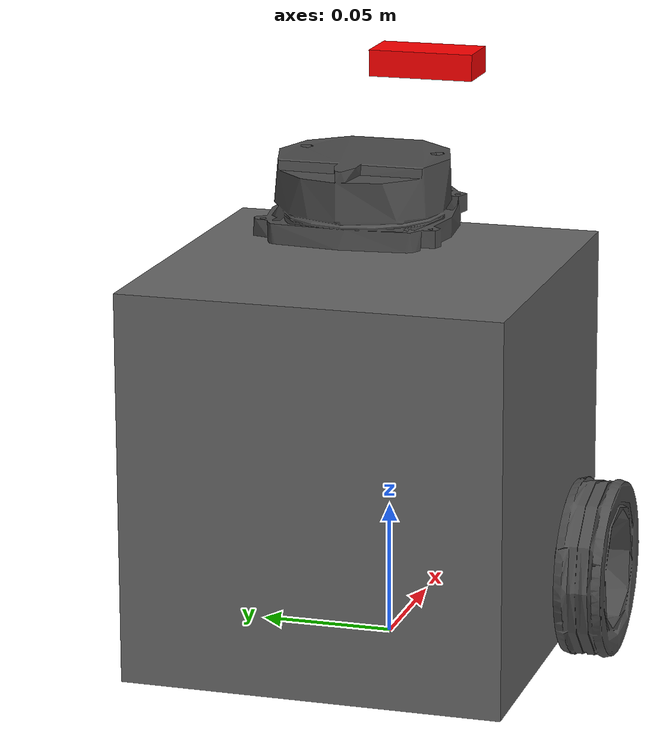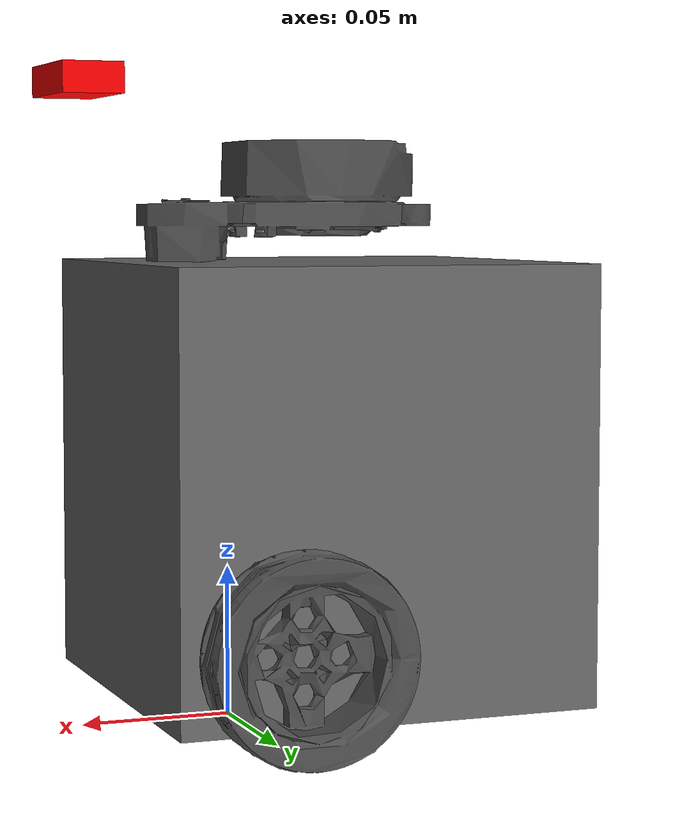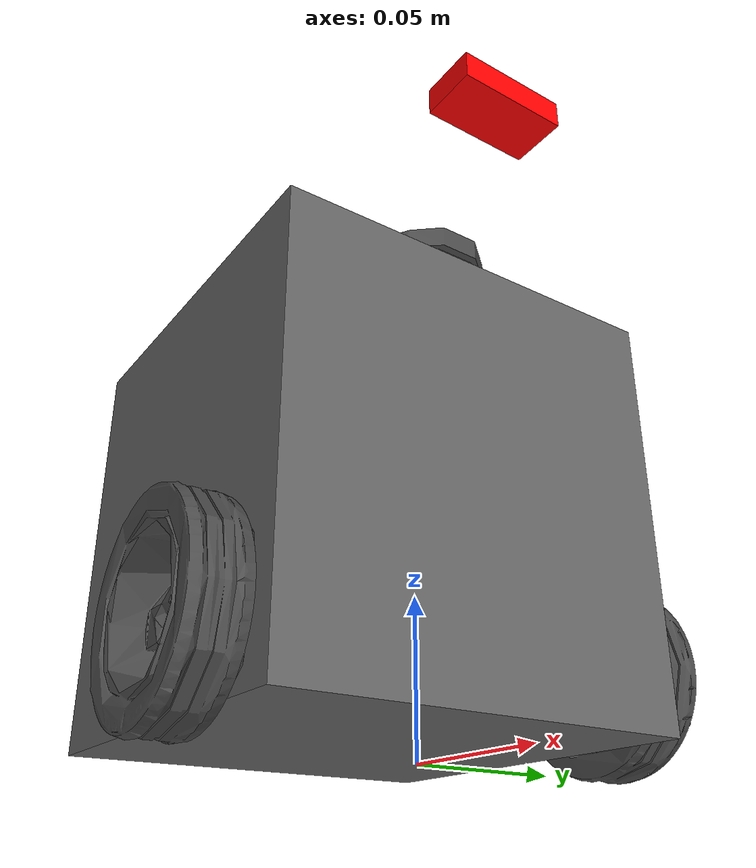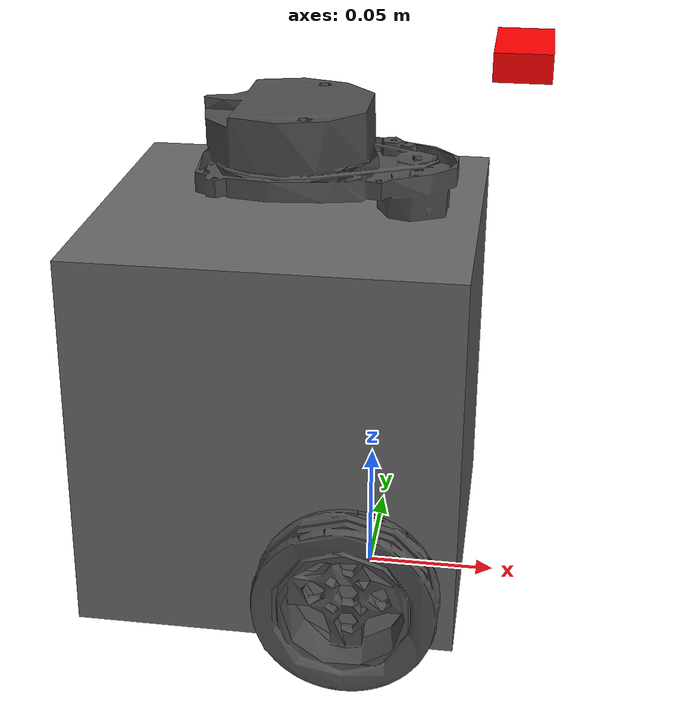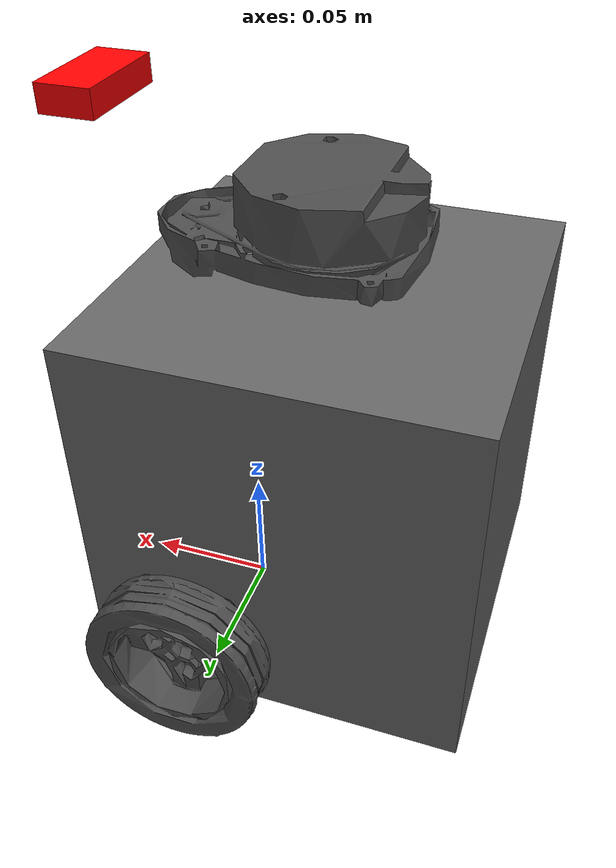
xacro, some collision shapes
<?xml version="1.0"?>
<robot xmlns:xacro="http://ros.org/wiki/xacro" name="turtlebot3_burger_radar">

  <xacro:include filename="$(find turtlebot3_description)/urdf/turtlebot3_burger.urdf"/>

  <link name="radar_link">
    <visual>
      <geometry><box size="0.02 0.04 0.01"/></geometry>
      <material name="red"><color rgba="1.0 0.0 0.0 1.0"/></material>
    </visual>
    <collision>
      <geometry><box size="0.02 0.04 0.01"/></geometry>
    </collision>
    <inertial>
      <mass value="0.01"/>
      <inertia ixx="0.0001" ixy="0" ixz="0" iyy="0.0001" iyz="0" izz="0.0001"/>
    </inertial>
  </link>

  <joint name="radar_joint" type="fixed">
    <parent link="base_link"/>
    <child link="radar_link"/>
    <origin xyz="0.05 0 0.2" rpy="0 0 0"/>
  </joint>

  <gazebo reference="radar_link">
    <material>Gazebo/Red</material>
    <sensor name="radar_sensor" type="ray">
      <always_on>true</always_on>
      <update_rate>10</update_rate>
      <visualize>true</visualize>
      <ray>
        <scan>
          <horizontal>
            <samples>32</samples>
            <resolution>1</resolution>
            <min_angle>-0.785</min_angle>
            <max_angle>0.785</max_angle>
          </horizontal>
        </scan>
        <range>
          <min>0.15</min>
          <max>5.0</max>
          <resolution>0.04</resolution>
        </range>
        <noise>
          <type>gaussian</type>
          <mean>0.0</mean>
          <stddev>0.2</stddev>
        </noise>
      </ray>
      <plugin name="radar_plugin" filename="libgazebo_ros_ray_sensor.so">
        <ros>
          <remapping>out:=radar_scan</remapping>
        </ros>
        <output_type>sensor_msgs/LaserScan</output_type>
        <frame_name>radar_link</frame_name>
      </plugin>
    </sensor>
  </gazebo>
</robot>

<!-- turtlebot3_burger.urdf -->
<!-- |    This document was autogenerated by xacro from /tmp/claude-0/-home-claude/8f5dd28e-fe63-5f45-8f7e-d1a0395364a9/scratchpad/repos/tb3/turtlebot3_description/urdf/turtlebot3_burger.urdf | -->
<!-- |    EDITING THIS FILE BY HAND IS NOT RECOMMENDED                                 | -->
<robot name="turtlebot3_burger">
  <!-- Init colour -->
  <material name="black">
    <color rgba="0.0 0.0 0.0 1.0"/>
  </material>
  <material name="dark">
    <color rgba="0.3 0.3 0.3 1.0"/>
  </material>
  <material name="light_black">
    <color rgba="0.4 0.4 0.4 1.0"/>
  </material>
  <material name="blue">
    <color rgba="0.0 0.0 0.8 1.0"/>
  </material>
  <material name="green">
    <color rgba="0.0 0.8 0.0 1.0"/>
  </material>
  <material name="grey">
    <color rgba="0.5 0.5 0.5 1.0"/>
  </material>
  <material name="orange">
    <color rgba="1.0 0.4235 0.0392 1.0"/>
  </material>
  <material name="brown">
    <color rgba="0.8706 0.8118 0.7647 1.0"/>
  </material>
  <material name="red">
    <color rgba="0.8 0.0 0.0 1.0"/>
  </material>
  <material name="white">
    <color rgba="1.0 1.0 1.0 1.0"/>
  </material>
  <link name="base_footprint"/>
  <joint name="base_joint" type="fixed">
    <parent link="base_footprint"/>
    <child link="base_link"/>
    <origin rpy="0 0 0" xyz="0.0 0.0 0.010"/>
  </joint>
  <link name="base_link">
    <visual>
      <origin rpy="0 0 0" xyz="-0.032 0 0.0"/>
      <geometry>
        <mesh filename="package://turtlebot3_description/meshes/bases/burger_base.stl" scale="0.001 0.001 0.001"/>
      </geometry>
      <material name="light_black"/>
    </visual>
    <collision>
      <origin rpy="0 0 0" xyz="-0.032 0 0.070"/>
      <geometry>
        <box size="0.140 0.140 0.143"/>
      </geometry>
    </collision>
    <inertial>
      <origin rpy="0 0 0" xyz="0 0 0"/>
      <mass value="8.2573504e-01"/>
      <inertia ixx="2.2124416e-03" ixy="-1.2294101e-05" ixz="3.4938785e-05" iyy="2.1193702e-03" iyz="-5.0120904e-06" izz="2.0064271e-03"/>
    </inertial>
  </link>
  <joint name="wheel_left_joint" type="continuous">
    <parent link="base_link"/>
    <child link="wheel_left_link"/>
    <origin rpy="-1.57 0 0" xyz="0.0 0.08 0.023"/>
    <axis xyz="0 0 1"/>
  </joint>
  <link name="wheel_left_link">
    <visual>
      <origin rpy="1.57 0 0" xyz="0 0 0"/>
      <geometry>
        <mesh filename="package://turtlebot3_description/meshes/wheels/left_tire.stl" scale="0.001 0.001 0.001"/>
      </geometry>
      <material name="dark"/>
    </visual>
    <collision>
      <origin rpy="0 0 0" xyz="0 0 0"/>
      <geometry>
        <cylinder length="0.018" radius="0.033"/>
      </geometry>
    </collision>
    <inertial>
      <origin xyz="0 0 0"/>
      <mass value="2.8498940e-02"/>
      <inertia ixx="1.1175580e-05" ixy="-4.2369783e-11" ixz="-5.9381719e-09" iyy="1.1192413e-05" iyz="-1.4400107e-11" izz="2.0712558e-05"/>
    </inertial>
  </link>
  <joint name="wheel_right_joint" type="continuous">
    <parent link="base_link"/>
    <child link="wheel_right_link"/>
    <origin rpy="-1.57 0 0" xyz="0.0 -0.080 0.023"/>
    <axis xyz="0 0 1"/>
  </joint>
  <link name="wheel_right_link">
    <visual>
      <origin rpy="1.57 0 0" xyz="0 0 0"/>
      <geometry>
        <mesh filename="package://turtlebot3_description/meshes/wheels/right_tire.stl" scale="0.001 0.001 0.001"/>
      </geometry>
      <material name="dark"/>
    </visual>
    <collision>
      <origin rpy="0 0 0" xyz="0 0 0"/>
      <geometry>
        <cylinder length="0.018" radius="0.033"/>
      </geometry>
    </collision>
    <inertial>
      <origin xyz="0 0 0"/>
      <mass value="2.8498940e-02"/>
      <inertia ixx="1.1175580e-05" ixy="-4.2369783e-11" ixz="-5.9381719e-09" iyy="1.1192413e-05" iyz="-1.4400107e-11" izz="2.0712558e-05"/>
    </inertial>
  </link>
  <joint name="caster_back_joint" type="fixed">
    <parent link="base_link"/>
    <child link="caster_back_link"/>
    <origin rpy="-1.57 0 0" xyz="-0.081 0 -0.004"/>
  </joint>
  <link name="caster_back_link">
    <collision>
      <origin rpy="0 0 0" xyz="0 0.001 0"/>
      <geometry>
        <box size="0.030 0.009 0.020"/>
      </geometry>
    </collision>
    <inertial>
      <origin xyz="0 0 0"/>
      <mass value="0.005"/>
      <inertia ixx="0.001" ixy="0.0" ixz="0.0" iyy="0.001" iyz="0.0" izz="0.001"/>
    </inertial>
  </link>
  <joint name="imu_joint" type="fixed">
    <parent link="base_link"/>
    <child link="imu_link"/>
    <origin rpy="0 0 0" xyz="-0.032 0 0.068"/>
  </joint>
  <link name="imu_link"/>
  <joint name="scan_joint" type="fixed">
    <parent link="base_link"/>
    <child link="base_scan"/>
    <origin rpy="0 0 0" xyz="-0.032 0 0.172"/>
  </joint>
  <link name="base_scan">
    <visual>
      <origin rpy="0 0 0" xyz="0 0 0.0"/>
      <geometry>
        <mesh filename="package://turtlebot3_description/meshes/sensors/lds.stl" scale="0.001 0.001 0.001"/>
      </geometry>
      <material name="dark"/>
    </visual>
    <collision>
      <origin rpy="0 0 0" xyz="0.015 0 -0.0065"/>
      <geometry>
        <cylinder length="0.0315" radius="0.055"/>
      </geometry>
    </collision>
    <inertial>
      <mass value="0.114"/>
      <origin xyz="0 0 0"/>
      <inertia ixx="0.001" ixy="0.0" ixz="0.0" iyy="0.001" iyz="0.0" izz="0.001"/>
    </inertial>
  </link>
</robot>
